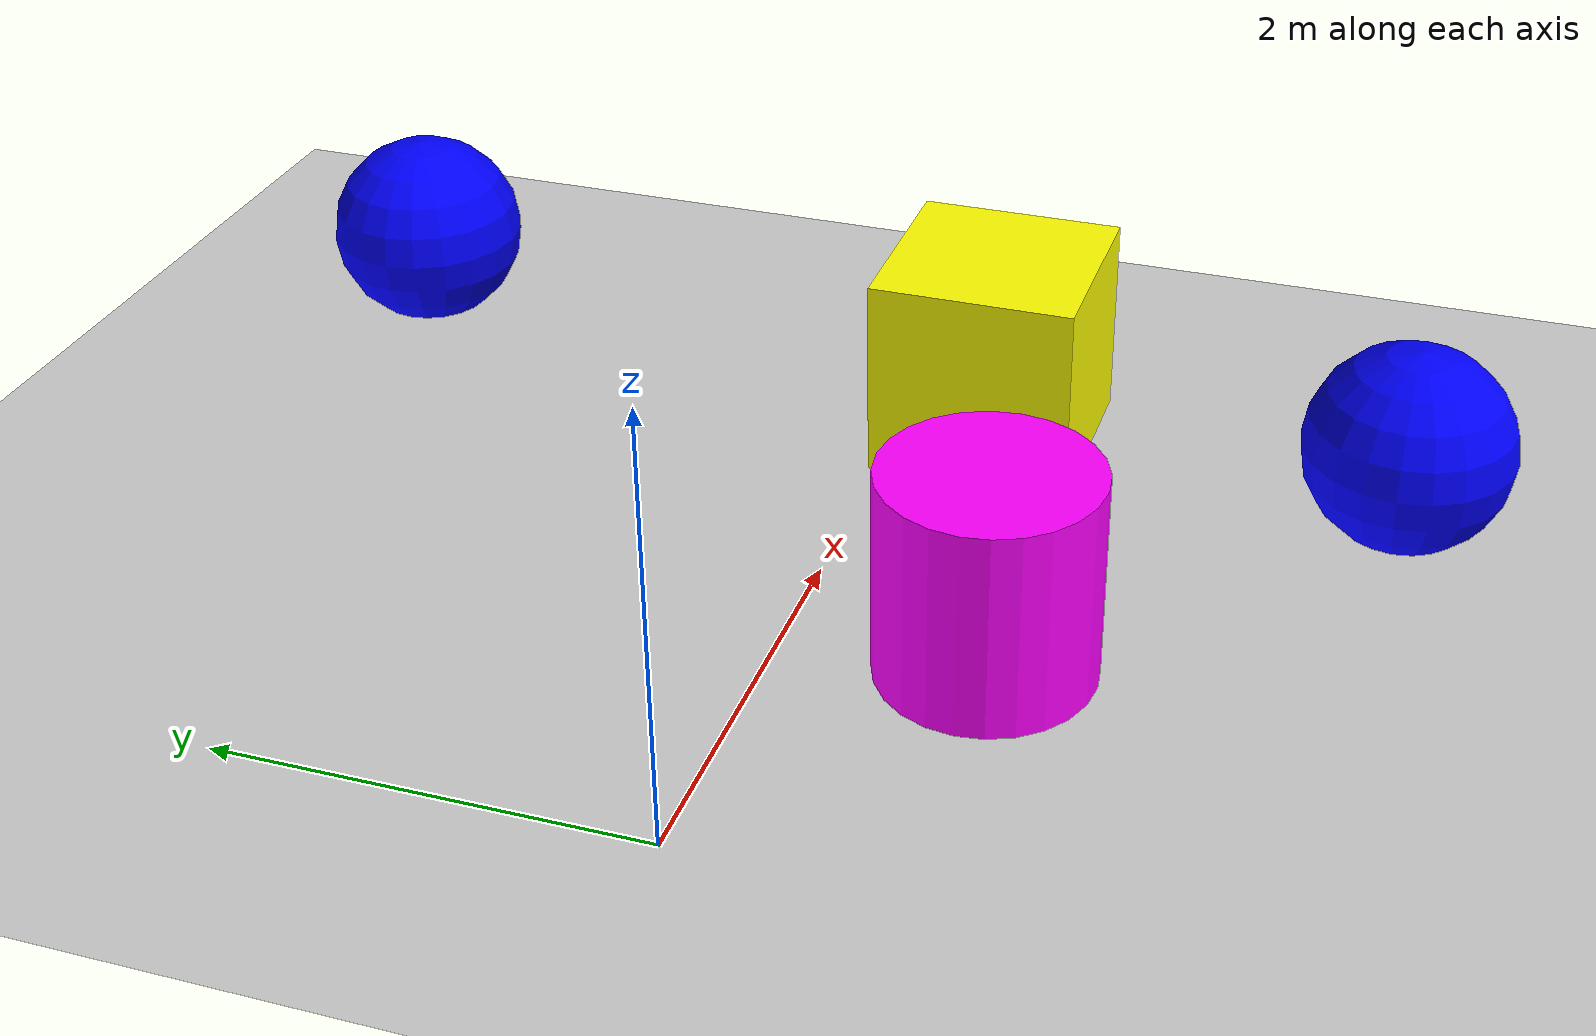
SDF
<sdf version="1.7">
 <world name="default">
  <model name="ground_plane">
   <static>1</static>
   <link name="link">
    <collision name="collision">
     <geometry><plane><normal>0 0 1</normal><size>100 100</size></plane></geometry>
     <surface><friction><ode><mu>100</mu><mu2>50</mu2></ode></friction></surface>
    </collision>
    <visual name="visual">
     <cast_shadows>0</cast_shadows>
     <geometry><plane><normal>0 0 1</normal><size>100 100</size></plane></geometry>
     <material>
      <script><uri>file://media/materials/scripts/gazebo.material</uri><name>Gazebo/Grey</name></script>
     </material>
    </visual>
   </link>
  </model>
  <model name="b">
   <link name="link">
    <inertial>
     <mass>1</mass>
     <inertia><ixx>0.1</ixx><ixy>0</ixy><ixz>0</ixz><iyy>0.1</iyy><iyz>0</iyz><izz>0.1</izz></inertia>
    </inertial>
    <visual name="visual">
     <geometry><sphere><radius>0.5</radius></sphere></geometry>
     <material>
      <script><name>Gazebo/Grey</name><uri>file://media/materials/scripts/gazebo.material</uri></script>
      <shader type="pixel"><normal_map>__default__</normal_map></shader>
      <ambient>0 0 1 0</ambient>
      <diffuse>0.7 0.7 0.7 1</diffuse>
      <specular>0.01 0.01 0.01 1</specular>
      <emissive>0 0 0 1</emissive>
     </material>
    </visual>
    <collision name="collision">
     <geometry><sphere><radius>0.5</radius></sphere></geometry>
     <surface>
      <friction>
       <ode><mu>1</mu><mu2>1</mu2><fdir1>0 0 0</fdir1><slip1>0</slip1><slip2>0</slip2></ode>
       <torsional>
        <coefficient>1</coefficient>
        <patch_radius>0</patch_radius>
        <surface_radius>0</surface_radius>
        <use_patch_radius>1</use_patch_radius>
        <ode><slip>0</slip></ode>
       </torsional>
      </friction>
      <bounce><restitution_coefficient>0</restitution_coefficient><threshold>1e+06</threshold></bounce>
      <contact>
       <collide_without_contact>0</collide_without_contact>
       <collide_without_contact_bitmask>1</collide_without_contact_bitmask>
       <collide_bitmask>1</collide_bitmask>
       <ode>
        <soft_cfm>0</soft_cfm>
        <soft_erp>0.2</soft_erp>
        <kp>1e+13</kp>
        <kd>1</kd>
        <max_vel>0.01</max_vel>
        <min_depth>0</min_depth>
       </ode>
       <bullet>
        <split_impulse>1</split_impulse>
        <split_impulse_penetration_threshold>-0.01</split_impulse_penetration_threshold>
        <soft_cfm>0</soft_cfm>
        <soft_erp>0.2</soft_erp>
        <kp>1e+13</kp>
        <kd>1</kd>
       </bullet>
      </contact>
     </surface>
    </collision>
   </link>
   <static>0</static>
   <pose>3.0726 -2.51149 0.5 0 -0 0</pose>
  </model>
  <model name="b_0">
   <link name="link">
    <inertial>
     <mass>1</mass>
     <inertia><ixx>0.1</ixx><ixy>0</ixy><ixz>0</ixz><iyy>0.1</iyy><iyz>0</iyz><izz>0.1</izz></inertia>
    </inertial>
    <visual name="visual">
     <geometry><sphere><radius>0.5</radius></sphere></geometry>
     <material>
      <script><name>Gazebo/Grey</name><uri>file://media/materials/scripts/gazebo.material</uri></script>
      <shader type="pixel"><normal_map>__default__</normal_map></shader>
      <ambient>0 0 1 0</ambient>
      <diffuse>0.7 0.7 0.7 1</diffuse>
      <specular>0.01 0.01 0.01 1</specular>
      <emissive>0 0 0 1</emissive>
     </material>
    </visual>
    <collision name="collision">
     <geometry><sphere><radius>0.5</radius></sphere></geometry>
     <surface>
      <friction>
       <ode><mu>1</mu><mu2>1</mu2><fdir1>0 0 0</fdir1><slip1>0</slip1><slip2>0</slip2></ode>
       <torsional>
        <coefficient>1</coefficient>
        <patch_radius>0</patch_radius>
        <surface_radius>0</surface_radius>
        <use_patch_radius>1</use_patch_radius>
        <ode><slip>0</slip></ode>
       </torsional>
      </friction>
      <bounce><restitution_coefficient>0</restitution_coefficient><threshold>1e+06</threshold></bounce>
      <contact>
       <collide_without_contact>0</collide_without_contact>
       <collide_without_contact_bitmask>1</collide_without_contact_bitmask>
       <collide_bitmask>1</collide_bitmask>
       <ode>
        <soft_cfm>0</soft_cfm>
        <soft_erp>0.2</soft_erp>
        <kp>1e+13</kp>
        <kd>1</kd>
        <max_vel>0.01</max_vel>
        <min_depth>0</min_depth>
       </ode>
       <bullet>
        <split_impulse>1</split_impulse>
        <split_impulse_penetration_threshold>-0.01</split_impulse_penetration_threshold>
        <soft_cfm>0</soft_cfm>
        <soft_erp>0.2</soft_erp>
        <kp>1e+13</kp>
        <kd>1</kd>
       </bullet>
      </contact>
     </surface>
    </collision>
   </link>
   <static>0</static>
   <pose>3.78494 2.84143 0.5 0 -0 0</pose>
  </model>
  <model name="y_0">
   <link name="link">
    <inertial>
     <mass>1</mass>
     <inertia>
      <ixx>0.166667</ixx>
      <ixy>0</ixy>
      <ixz>0</ixz>
      <iyy>0.166667</iyy>
      <iyz>0</iyz>
      <izz>0.166667</izz>
     </inertia>
    </inertial>
    <visual name="visual">
     <geometry><box><size>1 1 1</size></box></geometry>
     <material>
      <script><name>Gazebo/Grey</name><uri>file://media/materials/scripts/gazebo.material</uri></script>
      <shader type="pixel"><normal_map>__default__</normal_map></shader>
      <ambient>1 1 0 0</ambient>
      <diffuse>0.7 0.7 0.7 1</diffuse>
      <specular>0.01 0.01 0.01 1</specular>
      <emissive>0 0 0 1</emissive>
     </material>
    </visual>
    <collision name="collision">
     <geometry><box><size>1 1 1</size></box></geometry>
     <surface>
      <friction>
       <ode><mu>1</mu><mu2>1</mu2><fdir1>0 0 0</fdir1><slip1>0</slip1><slip2>0</slip2></ode>
       <torsional>
        <coefficient>1</coefficient>
        <patch_radius>0</patch_radius>
        <surface_radius>0</surface_radius>
        <use_patch_radius>1</use_patch_radius>
        <ode><slip>0</slip></ode>
       </torsional>
      </friction>
      <bounce><restitution_coefficient>0</restitution_coefficient><threshold>1e+06</threshold></bounce>
      <contact>
       <collide_without_contact>0</collide_without_contact>
       <collide_without_contact_bitmask>1</collide_without_contact_bitmask>
       <collide_bitmask>1</collide_bitmask>
       <ode>
        <soft_cfm>0</soft_cfm>
        <soft_erp>0.2</soft_erp>
        <kp>1e+13</kp>
        <kd>1</kd>
        <max_vel>0.01</max_vel>
        <min_depth>0</min_depth>
       </ode>
       <bullet>
        <split_impulse>1</split_impulse>
        <split_impulse_penetration_threshold>-0.01</split_impulse_penetration_threshold>
        <soft_cfm>0</soft_cfm>
        <soft_erp>0.2</soft_erp>
        <kp>1e+13</kp>
        <kd>1</kd>
       </bullet>
      </contact>
     </surface>
    </collision>
   </link>
   <static>0</static>
   <pose>3.41546 -0.440054 0.499995 -1e-05 -0 -0</pose>
  </model>
  <model name="1">
   <link name="link">
    <inertial>
     <mass>1</mass>
     <inertia><ixx>0.145833</ixx><ixy>0</ixy><ixz>0</ixz><iyy>0.145833</iyy><iyz>0</iyz><izz>0.125</izz></inertia>
    </inertial>
    <visual name="visual">
     <geometry><cylinder><radius>0.5</radius><length>1</length></cylinder></geometry>
     <material>
      <script><name>Gazebo/Grey</name><uri>file://media/materials/scripts/gazebo.material</uri></script>
      <shader type="pixel"><normal_map>__default__</normal_map></shader>
      <ambient>1 0 1 0</ambient>
      <diffuse>0.7 0.7 0.7 1</diffuse>
      <specular>0.01 0.01 0.01 1</specular>
      <emissive>0 0 0 1</emissive>
     </material>
    </visual>
    <collision name="collision">
     <geometry><cylinder><radius>0.5</radius><length>1</length></cylinder></geometry>
     <surface>
      <friction>
       <ode><mu>1</mu><mu2>1</mu2><fdir1>0 0 0</fdir1><slip1>0</slip1><slip2>0</slip2></ode>
       <torsional>
        <coefficient>1</coefficient>
        <patch_radius>0</patch_radius>
        <surface_radius>0</surface_radius>
        <use_patch_radius>1</use_patch_radius>
        <ode><slip>0</slip></ode>
       </torsional>
      </friction>
      <bounce><restitution_coefficient>0</restitution_coefficient><threshold>1e+06</threshold></bounce>
      <contact>
       <collide_without_contact>0</collide_without_contact>
       <collide_without_contact_bitmask>1</collide_without_contact_bitmask>
       <collide_bitmask>1</collide_bitmask>
       <ode>
        <soft_cfm>0</soft_cfm>
        <soft_erp>0.2</soft_erp>
        <kp>1e+13</kp>
        <kd>1</kd>
        <max_vel>0.01</max_vel>
        <min_depth>0</min_depth>
       </ode>
       <bullet>
        <split_impulse>1</split_impulse>
        <split_impulse_penetration_threshold>-0.01</split_impulse_penetration_threshold>
        <soft_cfm>0</soft_cfm>
        <soft_erp>0.2</soft_erp>
        <kp>1e+13</kp>
        <kd>1</kd>
       </bullet>
      </contact>
     </surface>
    </collision>
   </link>
   <static>0</static>
   <pose>1.50958 -0.921216 0.5 0 -0 0</pose>
  </model>
 </world>
</sdf>
